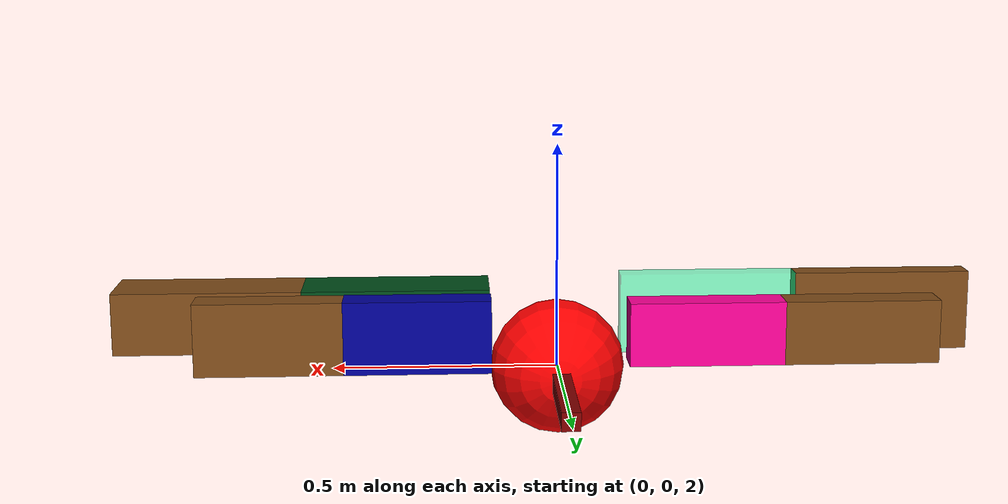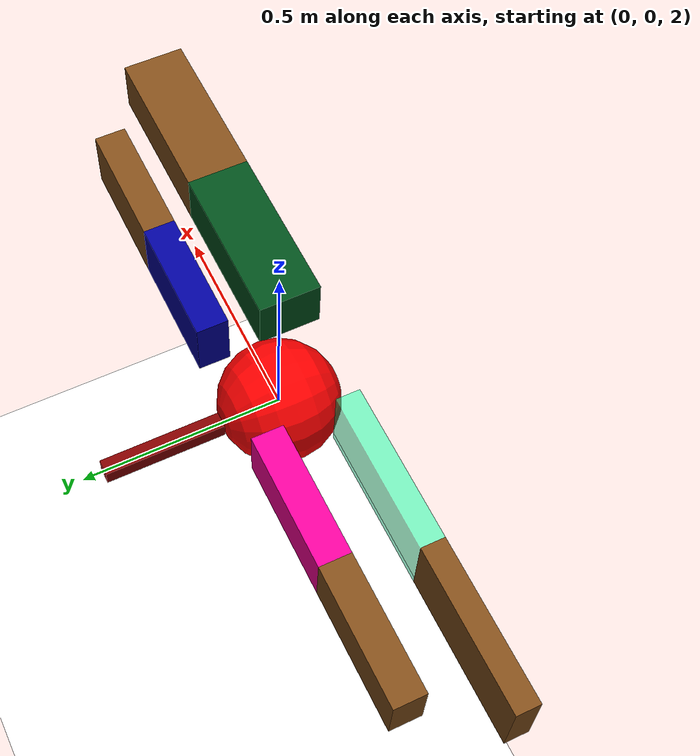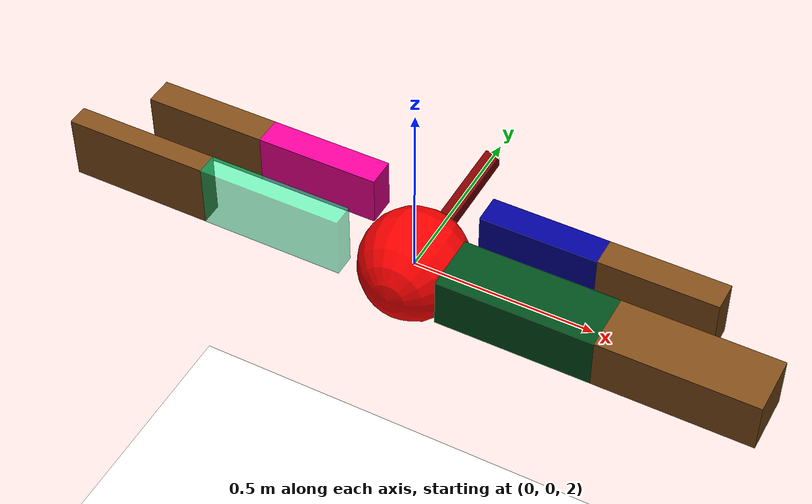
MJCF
<mujoco>
    <option gravity="0 0 -50.81" />
    <worldbody>
        <light diffuse="0.8 0.8 0.8" pos="0 0 8" dir="0 0 -1" />
        <geom type="plane" size="3 3 0.1" rgba="1 1 1 1" />

        <body name="main_body" pos="0 0 2">
            <joint name="main_body" type="free" />
            <geom type="sphere" size="0.15" rgba="1 0 0 1" euler="90 0 90" mass="40" />

            <body name="leg1" pos="-0.35 -0.1 0.1" euler="0 90 0">
                <joint name="leg1-1" pos="0 0 0.2" type="hinge" axis="0 1 0" range="-45 45" />
                <geom type="box" size="0.09 0.03 0.2" rgba="0 1 0.6 0.5" mass="10" />
                <body name="shank1" pos="0 0 -0.4">
                    <joint name="leg1-2" pos="0 0 0.2" type="hinge" axis="0 1 0" range="-90 -70" />
                    <geom type="box" size="0.09 0.03 0.2" rgba="0.5 0.3 0.1 1" mass="30" />
                </body>
            </body>

            <body name="leg2" pos="-0.32 0.1 0.1" euler="0 90 0">
                <joint name="leg2-1" pos="0 0 0.17" type="hinge" axis="0 1 0" range="-45 45" />
                <geom type="box" size="0.07 0.04 0.17" rgba="1 0 0.6 1" mass="10" />
                <body name="shank2" pos="0 0 -0.34">
                    <joint name="leg2-2" pos="0 0 0.17" type="hinge" axis="0 1 0" range="-90 -70" />
                    <geom type="box" size="0.07 0.04 0.17" rgba="0.5 0.3 0.1 1" mass="30" />
                </body>
            </body>

            <body name="leg3" pos="0.36 -0.1 0.1" euler="0 -90 0">
                <joint name="leg3-1" pos="0 0 0.21" type="hinge" axis="0 1 0" range="-45 45" />
                <geom type="box" size="0.07 0.08 0.21" rgba="0 0.3 0.1 1" mass="10" />
                <body name="shank3" pos="0 0 -0.42">
                    <joint name="leg3-2" pos="0 0 0.21" type="hinge" axis="0 1 0" range="70 90" />
                    <geom type="box" size="0.07 0.08 0.21" rgba="0.5 0.3 0.1 1" mass="30" />
                </body>
            </body>

            <body name="leg4" pos="0.31 0.1 0.1" euler="0 -90 0">
                <joint name="leg4-1" pos="0 0 0.16" type="hinge" axis="0 1 0" range="-45 45" />
                <geom type="box" size="0.08 0.04 0.16" rgba="0 0 0.6 1" mass="10" />
                <body name="shank4" pos="0 0 -0.32">
                    <joint name="leg4-2" pos="0 0 0.16" type="hinge" axis="0 1 0" range="70 90" />
                    <geom type="box" size="0.08 0.04 0.16" rgba="0.5 0.3 0.1 1" mass="30" />
                </body>
            </body>
        <body name="tail" pos="0 0.3 0"><geom type="box" mass = "30" size="0.02 0.15 0.02" rgba="0.5 0 0 1" /><joint name="tail1" type="hinge" pos="0 -0.05 0" axis="1 0 0" range="-37.732466501194516 9.100031997496382" /></body></body>

    </worldbody>
    <actuator>
        <motor joint="leg1-1" name="fl1j" />
        <motor joint="leg1-2" name="fl2j" />
        <motor joint="leg3-1" name="bl1j" />
        <motor joint="leg3-2" name="bl2j" />
        <motor joint="leg2-1" name="fr1j" />
        <motor joint="leg2-2" name="fr2j" />
        <motor joint="leg4-1" name="br1j" />
        <motor joint="leg4-2" name="br2j" />
    <motor joint="tail1" name="tail1j" /></actuator>
</mujoco>
